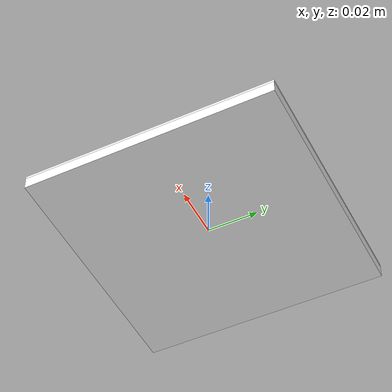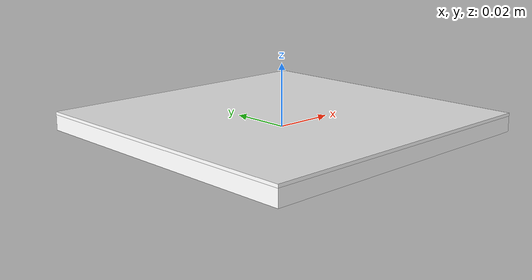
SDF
<?xml version="1.0" encoding="UTF-8"?>
<sdf version='1.9'>
  <model name='arucotag'>
    <static>true</static>
    <pose>0 0 0.001 0 0 0</pose>
    <link name="link">
      <inertial>
        <pose>0 0 0 0 0 0</pose>
        <mass>0.0001</mass>
        <inertia>
          <ixx>1.6667e-07</ixx>
          <ixy>0.0</ixy>
          <ixz>0.0</ixz>
          <iyy>1.6667e-07</iyy>
          <iyz>0.0</iyz>
          <izz>1.6667e-07</izz>
        </inertia>
      </inertial>
      <collision name="collision">
        <geometry>
          <box><size>0.1 0.1 0.005</size></box>
        </geometry>
      </collision>

      <visual name="visual_body">
        <geometry>
          <box><size>0.1 0.1 0.005</size></box>
        </geometry>
        <material>
          <ambient>1 1 1 1</ambient>
          <diffuse>1 1 1 1</diffuse>
          <specular>0.4 0.4 0.4 1</specular>
        </material>
      </visual>

      <visual name="visual_tag_face">
        <pose>0 0 0.003 0 0 0</pose>
        <geometry>
          <box><size>0.1 0.1 0.001</size></box>
        </geometry>
        <material>
          <pbr>
            <metal>
              <albedo_map>model://arucotag/aruco-6.png</albedo_map>
            </metal>
          </pbr>
          <ambient>1 1 1 1</ambient>
          <diffuse>1 1 1 1</diffuse>
          <specular>0 0 0 1</specular>
        </material>
      </visual>
    </link>
  </model> </sdf>
